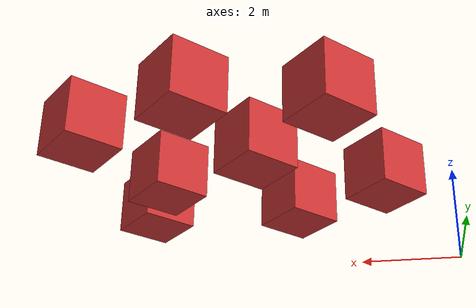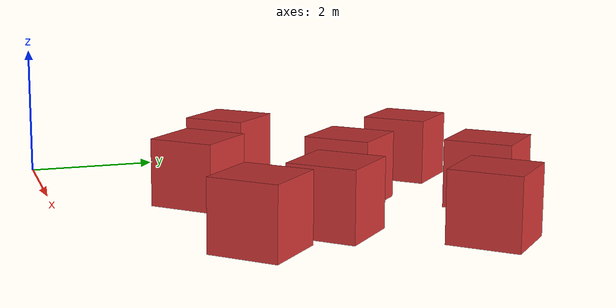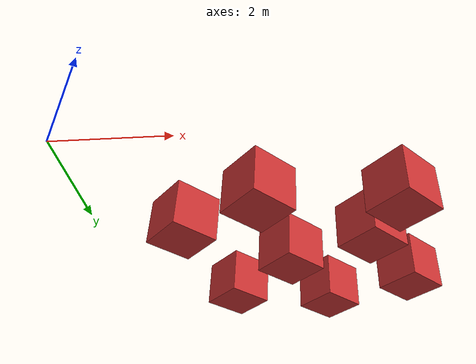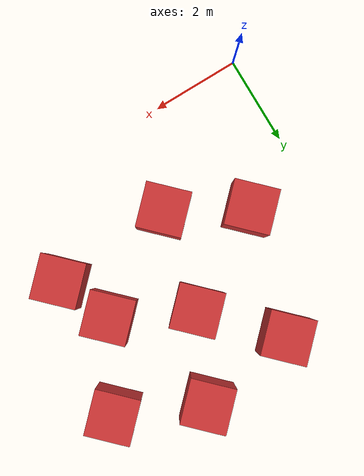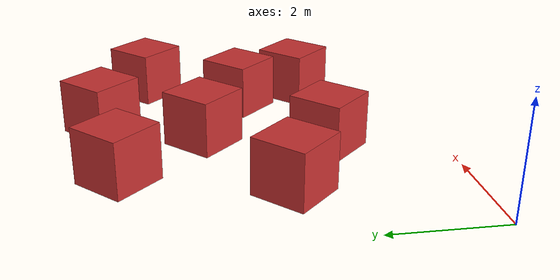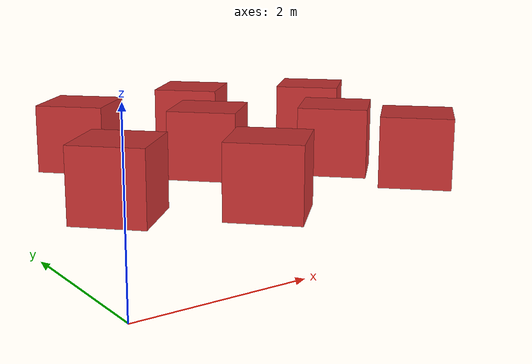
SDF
<?xml version='1.0' encoding='utf-8'?>
<sdf version="1.6">
  <model name="obstacles_dense">
    <static>true</static>
    <pose>4 4 0.5 0 0 0.785</pose>

    <link name="zig_1">
      <pose>-2.5 1.1 0 0 0 0</pose>
      <collision name="c1"><geometry><box><size>1 1 1</size></box></geometry></collision>
      <visual name="v1"><geometry><box><size>1 1 1</size></box></geometry><material><ambient>0.8 0.2 0.2 1</ambient></material></visual>
    </link>

    <link name="zag_1">
      <pose>-2 -0.7 0 0 0 0</pose>
      <collision name="c2"><geometry><box><size>1 1 1</size></box></geometry></collision>
      <visual name="v2"><geometry><box><size>1 1 1</size></box></geometry><material><ambient>0.8 0.2 0.2 1</ambient></material></visual>
    </link>

    <link name="zig_2">
      <pose>-0.1 0.5 0 0 0 0</pose>
      <collision name="c3"><geometry><box><size>1 1 1</size></box></geometry></collision>
      <visual name="v3"><geometry><box><size>1 1 1</size></box></geometry><material><ambient>0.8 0.2 0.2 1</ambient></material></visual>
    </link>
    <link name="zag_2">
      <pose>0.5 -1.3 0 0 0 0</pose>
      <collision name="c4"><geometry><box><size>1 1 1</size></box></geometry></collision>
      <visual name="v4"><geometry><box><size>1 1 1</size></box></geometry><material><ambient>0.8 0.2 0.2 1</ambient></material></visual>
    </link>

    <link name="zig_3">
      <pose>1.8 1.2 0 0 0 0</pose>
      <collision name="c5"><geometry><box><size>1 1 1</size></box></geometry></collision>
      <visual name="v5"><geometry><box><size>1 1 1</size></box></geometry><material><ambient>0.8 0.2 0.2 1</ambient></material></visual>
    </link>
    <link name="zag_3">
      <pose>2.5 -0.7 0 0 0 0</pose>
      <collision name="c6"><geometry><box><size>1 1 1</size></box></geometry></collision>
      <visual name="v6"><geometry><box><size>1 1 1</size></box></geometry><material><ambient>0.8 0.2 0.2 1</ambient></material></visual>
    </link>

    <link name="wall_L">
      <pose>0.0 2.5 0 0 0 0</pose>
      <collision name="c7"><geometry><box><size>1 1 1</size></box></geometry></collision>
      <visual name="v7"><geometry><box><size>1 1 1</size></box></geometry><material><ambient>0.8 0.2 0.2 1</ambient></material></visual>
    </link>
    <link name="wall_R">
      <pose>0.0 -2.5 0 0 0 0</pose>
      <collision name="c8"><geometry><box><size>1 1 1</size></box></geometry></collision>
      <visual name="v8"><geometry><box><size>1 1 1</size></box></geometry><material><ambient>0.8 0.2 0.2 1</ambient></material></visual>
    </link>

  </model>
</sdf>
